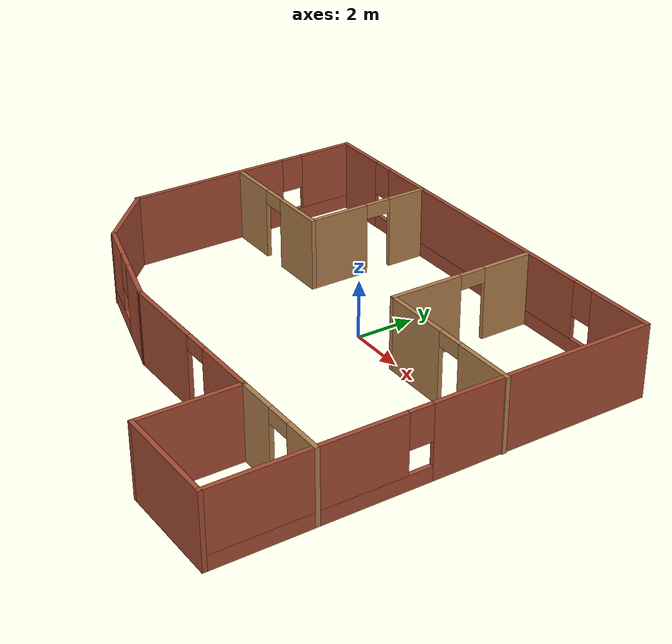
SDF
<?xml version='1.0'?>
<sdf version='1.6'>
  <model name='Building1'>
    <pose frame=''>-0.36207 -2.35948 0 0 -0 0</pose>
    <link name='Wall_0'>
      <pose frame=''>-7.80588 3.125 0 0 -0 1.5708</pose>
      <visual name='Wall_0_Visual_0'>
        <pose frame=''>-1.4063 0 1.25 0 -0 0</pose>
        <geometry>
          <box>
            <size>5.68739 0.15 2.5</size>
          </box>
        </geometry>
        <material>
          <script>
            <uri>file://media/materials/scripts/gazebo.material</uri>
            <name>Gazebo/Bricks</name>
          </script>
          <ambient>1 1 1 1</ambient>
        </material>
        <meta>
          <layer>0</layer>
        </meta>
      </visual>
      <collision name='Wall_0_Collision_0'>
        <geometry>
          <box>
            <size>5.68739 0.15 2.5</size>
          </box>
        </geometry>
        <pose frame=''>-1.4063 0 1.25 0 -0 0</pose>
      </collision>
      <visual name='Wall_0_Visual_1'>
        <pose frame=''>2.8437 0 0.25 0 -0 0</pose>
        <geometry>
          <box>
            <size>2.81261 0.15 0.5</size>
          </box>
        </geometry>
        <material>
          <script>
            <uri>file://media/materials/scripts/gazebo.material</uri>
            <name>Gazebo/Bricks</name>
          </script>
          <ambient>1 1 1 1</ambient>
        </material>
        <meta>
          <layer>0</layer>
        </meta>
      </visual>
      <collision name='Wall_0_Collision_1'>
        <geometry>
          <box>
            <size>2.81261 0.15 0.5</size>
          </box>
        </geometry>
        <pose frame=''>2.8437 0 0.25 0 -0 0</pose>
      </collision>
      <visual name='Wall_0_Visual_2'>
        <pose frame=''>3.2437 0 1.5 0 -0 0</pose>
        <geometry>
          <box>
            <size>2.01261 0.15 2</size>
          </box>
        </geometry>
        <material>
          <script>
            <uri>file://media/materials/scripts/gazebo.material</uri>
            <name>Gazebo/Bricks</name>
          </script>
          <ambient>1 1 1 1</ambient>
        </material>
        <meta>
          <layer>0</layer>
        </meta>
      </visual>
      <collision name='Wall_0_Collision_2'>
        <geometry>
          <box>
            <size>2.01261 0.15 2</size>
          </box>
        </geometry>
        <pose frame=''>3.2437 0 1.5 0 -0 0</pose>
      </collision>
      <visual name='Wall_0_Visual_3'>
        <pose frame=''>1.83739 0 1.9 0 -0 0</pose>
        <geometry>
          <box>
            <size>0.8 0.15 1.2</size>
          </box>
        </geometry>
        <material>
          <script>
            <uri>file://media/materials/scripts/gazebo.material</uri>
            <name>Gazebo/Bricks</name>
          </script>
          <ambient>1 1 1 1</ambient>
        </material>
        <meta>
          <layer>0</layer>
        </meta>
      </visual>
      <collision name='Wall_0_Collision_3'>
        <geometry>
          <box>
            <size>0.8 0.15 1.2</size>
          </box>
        </geometry>
        <pose frame=''>1.83739 0 1.9 0 -0 0</pose>
      </collision>
    </link>
    <link name='Wall_1'>
      <pose frame=''>-0.00588 7.3 0 0 -0 0</pose>
      <visual name='Wall_1_Visual_0'>
        <pose frame=''>-6.85763 0 1.25 0 -0 0</pose>
        <geometry>
          <box>
            <size>2.03474 0.15 2.5</size>
          </box>
        </geometry>
        <material>
          <script>
            <uri>file://media/materials/scripts/gazebo.material</uri>
            <name>Gazebo/Bricks</name>
          </script>
          <ambient>1 1 1 1</ambient>
        </material>
        <meta>
          <layer>0</layer>
        </meta>
      </visual>
      <collision name='Wall_1_Collision_0'>
        <geometry>
          <box>
            <size>2.03474 0.15 2.5</size>
          </box>
        </geometry>
        <pose frame=''>-6.85763 0 1.25 0 -0 0</pose>
      </collision>
      <visual name='Wall_1_Visual_1'>
        <pose frame=''>1.01737 0 0.25 0 -0 0</pose>
        <geometry>
          <box>
            <size>13.7153 0.15 0.5</size>
          </box>
        </geometry>
        <material>
          <script>
            <uri>file://media/materials/scripts/gazebo.material</uri>
            <name>Gazebo/Bricks</name>
          </script>
          <ambient>1 1 1 1</ambient>
        </material>
        <meta>
          <layer>0</layer>
        </meta>
      </visual>
      <collision name='Wall_1_Collision_1'>
        <geometry>
          <box>
            <size>13.7153 0.15 0.5</size>
          </box>
        </geometry>
        <pose frame=''>1.01737 0 0.25 0 -0 0</pose>
      </collision>
      <visual name='Wall_1_Visual_2'>
        <pose frame=''>-0.167606 0 1.5 0 -0 0</pose>
        <geometry>
          <box>
            <size>9.74531 0.15 2</size>
          </box>
        </geometry>
        <material>
          <script>
            <uri>file://media/materials/scripts/gazebo.material</uri>
            <name>Gazebo/Bricks</name>
          </script>
          <ambient>1 1 1 1</ambient>
        </material>
        <meta>
          <layer>0</layer>
        </meta>
      </visual>
      <collision name='Wall_1_Collision_2'>
        <geometry>
          <box>
            <size>9.74531 0.15 2</size>
          </box>
        </geometry>
        <pose frame=''>-0.167606 0 1.5 0 -0 0</pose>
      </collision>
      <visual name='Wall_1_Visual_3'>
        <pose frame=''>6.69002 0 1.5 0 -0 0</pose>
        <geometry>
          <box>
            <size>2.36995 0.15 2</size>
          </box>
        </geometry>
        <material>
          <script>
            <uri>file://media/materials/scripts/gazebo.material</uri>
            <name>Gazebo/Bricks</name>
          </script>
          <ambient>1 1 1 1</ambient>
        </material>
        <meta>
          <layer>0</layer>
        </meta>
      </visual>
      <collision name='Wall_1_Collision_3'>
        <geometry>
          <box>
            <size>2.36995 0.15 2</size>
          </box>
        </geometry>
        <pose frame=''>6.69002 0 1.5 0 -0 0</pose>
      </collision>
      <visual name='Wall_1_Visual_4'>
        <pose frame=''>-5.44026 0 1.9 0 -0 0</pose>
        <geometry>
          <box>
            <size>0.8 0.15 1.2</size>
          </box>
        </geometry>
        <material>
          <script>
            <uri>file://media/materials/scripts/gazebo.material</uri>
            <name>Gazebo/Bricks</name>
          </script>
          <ambient>1 1 1 1</ambient>
        </material>
        <meta>
          <layer>0</layer>
        </meta>
      </visual>
      <collision name='Wall_1_Collision_4'>
        <geometry>
          <box>
            <size>0.8 0.15 1.2</size>
          </box>
        </geometry>
        <pose frame=''>-5.44026 0 1.9 0 -0 0</pose>
      </collision>
      <visual name='Wall_1_Visual_5'>
        <pose frame=''>5.10505 0 1.9 0 -0 0</pose>
        <geometry>
          <box>
            <size>0.8 0.15 1.2</size>
          </box>
        </geometry>
        <material>
          <script>
            <uri>file://media/materials/scripts/gazebo.material</uri>
            <name>Gazebo/Bricks</name>
          </script>
          <ambient>1 1 1 1</ambient>
        </material>
        <meta>
          <layer>0</layer>
        </meta>
      </visual>
      <collision name='Wall_1_Collision_5'>
        <geometry>
          <box>
            <size>0.8 0.15 1.2</size>
          </box>
        </geometry>
        <pose frame=''>5.10505 0 1.9 0 -0 0</pose>
      </collision>
    </link>
    <link name='Wall_10'>
      <pose frame=''>-5.47687 2.90704 0 0 -0 3.14159</pose>
      <visual name='Wall_10_Visual_0'>
        <pose frame=''>-1.38853 0 1.25 0 -0 0</pose>
        <geometry>
          <box>
            <size>1.97295 0.15 2.5</size>
          </box>
        </geometry>
        <material>
          <script>
            <uri>file://media/materials/scripts/gazebo.material</uri>
            <name>Gazebo/Wood</name>
          </script>
          <ambient>1 1 1 1</ambient>
        </material>
        <meta>
          <layer>0</layer>
        </meta>
      </visual>
      <collision name='Wall_10_Collision_0'>
        <geometry>
          <box>
            <size>1.97295 0.15 2.5</size>
          </box>
        </geometry>
        <pose frame=''>-1.38853 0 1.25 0 -0 0</pose>
      </collision>
      <visual name='Wall_10_Visual_1'>
        <pose frame=''>1.43647 0 1.25 0 -0 0</pose>
        <geometry>
          <box>
            <size>1.87705 0.15 2.5</size>
          </box>
        </geometry>
        <material>
          <script>
            <uri>file://media/materials/scripts/gazebo.material</uri>
            <name>Gazebo/Wood</name>
          </script>
          <ambient>1 1 1 1</ambient>
        </material>
        <meta>
          <layer>0</layer>
        </meta>
      </visual>
      <collision name='Wall_10_Collision_1'>
        <geometry>
          <box>
            <size>1.87705 0.15 2.5</size>
          </box>
        </geometry>
        <pose frame=''>1.43647 0 1.25 0 -0 0</pose>
      </collision>
      <visual name='Wall_10_Visual_2'>
        <pose frame=''>0.047946 0 2.25 0 -0 0</pose>
        <geometry>
          <box>
            <size>0.9 0.15 0.5</size>
          </box>
        </geometry>
        <material>
          <script>
            <uri>file://media/materials/scripts/gazebo.material</uri>
            <name>Gazebo/Wood</name>
          </script>
          <ambient>1 1 1 1</ambient>
        </material>
        <meta>
          <layer>0</layer>
        </meta>
      </visual>
      <collision name='Wall_10_Collision_2'>
        <geometry>
          <box>
            <size>0.9 0.15 0.5</size>
          </box>
        </geometry>
        <pose frame=''>0.047946 0 2.25 0 -0 0</pose>
      </collision>
    </link>
    <link name='Wall_12'>
      <pose frame=''>5.99412 -3.95 0 0 -0 0</pose>
      <visual name='Wall_12_Visual_0'>
        <pose frame=''>-1.13506 0 1.25 0 -0 0</pose>
        <geometry>
          <box>
            <size>1.47988 0.15 2.5</size>
          </box>
        </geometry>
        <material>
          <script>
            <uri>file://media/materials/scripts/gazebo.material</uri>
            <name>Gazebo/Wood</name>
          </script>
          <ambient>1 1 1 1</ambient>
        </material>
        <meta>
          <layer>0</layer>
        </meta>
      </visual>
      <collision name='Wall_12_Collision_0'>
        <geometry>
          <box>
            <size>1.47988 0.15 2.5</size>
          </box>
        </geometry>
        <pose frame=''>-1.13506 0 1.25 0 -0 0</pose>
      </collision>
      <visual name='Wall_12_Visual_1'>
        <pose frame=''>1.18994 0 1.25 0 -0 0</pose>
        <geometry>
          <box>
            <size>1.37013 0.15 2.5</size>
          </box>
        </geometry>
        <material>
          <script>
            <uri>file://media/materials/scripts/gazebo.material</uri>
            <name>Gazebo/Wood</name>
          </script>
          <ambient>1 1 1 1</ambient>
        </material>
        <meta>
          <layer>0</layer>
        </meta>
      </visual>
      <collision name='Wall_12_Collision_1'>
        <geometry>
          <box>
            <size>1.37013 0.15 2.5</size>
          </box>
        </geometry>
        <pose frame=''>1.18994 0 1.25 0 -0 0</pose>
      </collision>
      <visual name='Wall_12_Visual_2'>
        <pose frame=''>0.054875 0 2.25 0 -0 0</pose>
        <geometry>
          <box>
            <size>0.9 0.15 0.5</size>
          </box>
        </geometry>
        <material>
          <script>
            <uri>file://media/materials/scripts/gazebo.material</uri>
            <name>Gazebo/Wood</name>
          </script>
          <ambient>1 1 1 1</ambient>
        </material>
        <meta>
          <layer>0</layer>
        </meta>
      </visual>
      <collision name='Wall_12_Collision_2'>
        <geometry>
          <box>
            <size>0.9 0.15 0.5</size>
          </box>
        </geometry>
        <pose frame=''>0.054875 0 2.25 0 -0 0</pose>
      </collision>
    </link>
    <link name='Wall_17'>
      <pose frame=''>2.48691 4.70704 0 0 0 -1.5708</pose>
      <visual name='Wall_17_Visual_0'>
        <pose frame=''>-1.71972 0 1.25 0 -0 0</pose>
        <geometry>
          <box>
            <size>1.81055 0.15 2.5</size>
          </box>
        </geometry>
        <material>
          <script>
            <uri>file://media/materials/scripts/gazebo.material</uri>
            <name>Gazebo/Wood</name>
          </script>
          <ambient>1 1 1 1</ambient>
        </material>
        <meta>
          <layer>0</layer>
        </meta>
      </visual>
      <collision name='Wall_17_Collision_0'>
        <geometry>
          <box>
            <size>1.81055 0.15 2.5</size>
          </box>
        </geometry>
        <pose frame=''>-1.71972 0 1.25 0 -0 0</pose>
      </collision>
      <visual name='Wall_17_Visual_1'>
        <pose frame=''>1.35528 0 1.25 0 -0 0</pose>
        <geometry>
          <box>
            <size>2.53945 0.15 2.5</size>
          </box>
        </geometry>
        <material>
          <script>
            <uri>file://media/materials/scripts/gazebo.material</uri>
            <name>Gazebo/Wood</name>
          </script>
          <ambient>1 1 1 1</ambient>
        </material>
        <meta>
          <layer>0</layer>
        </meta>
      </visual>
      <collision name='Wall_17_Collision_1'>
        <geometry>
          <box>
            <size>2.53945 0.15 2.5</size>
          </box>
        </geometry>
        <pose frame=''>1.35528 0 1.25 0 -0 0</pose>
      </collision>
      <visual name='Wall_17_Visual_2'>
        <pose frame=''>-0.364448 0 2.25 0 -0 0</pose>
        <geometry>
          <box>
            <size>0.9 0.15 0.5</size>
          </box>
        </geometry>
        <material>
          <script>
            <uri>file://media/materials/scripts/gazebo.material</uri>
            <name>Gazebo/Wood</name>
          </script>
          <ambient>1 1 1 1</ambient>
        </material>
        <meta>
          <layer>0</layer>
        </meta>
      </visual>
      <collision name='Wall_17_Collision_2'>
        <geometry>
          <box>
            <size>0.9 0.15 0.5</size>
          </box>
        </geometry>
        <pose frame=''>-0.364448 0 2.25 0 -0 0</pose>
      </collision>
    </link>
    <link name='Wall_18'>
      <pose frame=''>5.16191 2.15704 0 0 -0 0</pose>
      <visual name='Wall_18_Visual_0'>
        <pose frame=''>-1.52583 0 1.25 0 -0 0</pose>
        <geometry>
          <box>
            <size>2.44833 0.15 2.5</size>
          </box>
        </geometry>
        <material>
          <script>
            <uri>file://media/materials/scripts/gazebo.material</uri>
            <name>Gazebo/Wood</name>
          </script>
          <ambient>1 1 1 1</ambient>
        </material>
        <meta>
          <layer>0</layer>
        </meta>
      </visual>
      <collision name='Wall_18_Collision_0'>
        <geometry>
          <box>
            <size>2.44833 0.15 2.5</size>
          </box>
        </geometry>
        <pose frame=''>-1.52583 0 1.25 0 -0 0</pose>
      </collision>
      <visual name='Wall_18_Visual_1'>
        <pose frame=''>1.67417 0 1.25 0 -0 0</pose>
        <geometry>
          <box>
            <size>2.15167 0.15 2.5</size>
          </box>
        </geometry>
        <material>
          <script>
            <uri>file://media/materials/scripts/gazebo.material</uri>
            <name>Gazebo/Wood</name>
          </script>
          <ambient>1 1 1 1</ambient>
        </material>
        <meta>
          <layer>0</layer>
        </meta>
      </visual>
      <collision name='Wall_18_Collision_1'>
        <geometry>
          <box>
            <size>2.15167 0.15 2.5</size>
          </box>
        </geometry>
        <pose frame=''>1.67417 0 1.25 0 -0 0</pose>
      </collision>
      <visual name='Wall_18_Visual_2'>
        <pose frame=''>0.148333 0 2.25 0 -0 0</pose>
        <geometry>
          <box>
            <size>0.9 0.15 0.5</size>
          </box>
        </geometry>
        <material>
          <script>
            <uri>file://media/materials/scripts/gazebo.material</uri>
            <name>Gazebo/Wood</name>
          </script>
          <ambient>1 1 1 1</ambient>
        </material>
        <meta>
          <layer>0</layer>
        </meta>
      </visual>
      <collision name='Wall_18_Collision_2'>
        <geometry>
          <box>
            <size>0.9 0.15 0.5</size>
          </box>
        </geometry>
        <pose frame=''>0.148333 0 2.25 0 -0 0</pose>
      </collision>
    </link>
    <link name='Wall_2'>
      <pose frame=''>7.79412 0 0 0 0 -1.5708</pose>
      <visual name='Wall_2_Visual_0'>
        <pose frame=''>-3.54908 0 1.25 0 -0 0</pose>
        <geometry>
          <box>
            <size>7.65185 0.15 2.5</size>
          </box>
        </geometry>
        <material>
          <script>
            <uri>file://media/materials/scripts/gazebo.material</uri>
            <name>Gazebo/Bricks</name>
          </script>
          <ambient>1 1 1 1</ambient>
        </material>
        <meta>
          <layer>0</layer>
        </meta>
      </visual>
      <collision name='Wall_2_Collision_0'>
        <geometry>
          <box>
            <size>7.65185 0.15 2.5</size>
          </box>
        </geometry>
        <pose frame=''>-3.54908 0 1.25 0 -0 0</pose>
      </collision>
      <visual name='Wall_2_Visual_1'>
        <pose frame=''>3.82592 0 0.25 0 -0 0</pose>
        <geometry>
          <box>
            <size>7.09815 0.15 0.5</size>
          </box>
        </geometry>
        <material>
          <script>
            <uri>file://media/materials/scripts/gazebo.material</uri>
            <name>Gazebo/Bricks</name>
          </script>
          <ambient>1 1 1 1</ambient>
        </material>
        <meta>
          <layer>0</layer>
        </meta>
      </visual>
      <collision name='Wall_2_Collision_1'>
        <geometry>
          <box>
            <size>7.09815 0.15 0.5</size>
          </box>
        </geometry>
        <pose frame=''>3.82592 0 0.25 0 -0 0</pose>
      </collision>
      <visual name='Wall_2_Visual_2'>
        <pose frame=''>4.22592 0 1.5 0 -0 0</pose>
        <geometry>
          <box>
            <size>6.29815 0.15 2</size>
          </box>
        </geometry>
        <material>
          <script>
            <uri>file://media/materials/scripts/gazebo.material</uri>
            <name>Gazebo/Bricks</name>
          </script>
          <ambient>1 1 1 1</ambient>
        </material>
        <meta>
          <layer>0</layer>
        </meta>
      </visual>
      <collision name='Wall_2_Collision_2'>
        <geometry>
          <box>
            <size>6.29815 0.15 2</size>
          </box>
        </geometry>
        <pose frame=''>4.22592 0 1.5 0 -0 0</pose>
      </collision>
      <visual name='Wall_2_Visual_3'>
        <pose frame=''>0.676848 0 1.9 0 -0 0</pose>
        <geometry>
          <box>
            <size>0.8 0.15 1.2</size>
          </box>
        </geometry>
        <material>
          <script>
            <uri>file://media/materials/scripts/gazebo.material</uri>
            <name>Gazebo/Bricks</name>
          </script>
          <ambient>1 1 1 1</ambient>
        </material>
        <meta>
          <layer>0</layer>
        </meta>
      </visual>
      <collision name='Wall_2_Collision_3'>
        <geometry>
          <box>
            <size>0.8 0.15 1.2</size>
          </box>
        </geometry>
        <pose frame=''>0.676848 0 1.9 0 -0 0</pose>
      </collision>
    </link>
    <link name='Wall_3'>
      <collision name='Wall_3_Collision'>
        <geometry>
          <box>
            <size>3.75 0.15 2.5</size>
          </box>
        </geometry>
        <pose frame=''>0 0 1.25 0 -0 0</pose>
      </collision>
      <visual name='Wall_3_Visual'>
        <pose frame=''>0 0 1.25 0 -0 0</pose>
        <geometry>
          <box>
            <size>3.75 0.15 2.5</size>
          </box>
        </geometry>
        <material>
          <script>
            <uri>file://media/materials/scripts/gazebo.material</uri>
            <name>Gazebo/Bricks</name>
          </script>
          <ambient>1 1 1 1</ambient>
        </material>
        <meta>
          <layer>0</layer>
        </meta>
      </visual>
      <pose frame=''>5.99412 -7.3 0 0 -0 3.14159</pose>
    </link>
    <link name='Wall_4'>
      <collision name='Wall_4_Collision'>
        <geometry>
          <box>
            <size>3.5 0.15 2.5</size>
          </box>
        </geometry>
        <pose frame=''>0 0 1.25 0 -0 0</pose>
      </collision>
      <visual name='Wall_4_Visual'>
        <pose frame=''>0 0 1.25 0 -0 0</pose>
        <geometry>
          <box>
            <size>3.5 0.15 2.5</size>
          </box>
        </geometry>
        <material>
          <script>
            <uri>file://media/materials/scripts/gazebo.material</uri>
            <name>Gazebo/Bricks</name>
          </script>
          <ambient>1 1 1 1</ambient>
        </material>
        <meta>
          <layer>0</layer>
        </meta>
      </visual>
      <pose frame=''>4.19412 -5.625 0 0 -0 1.5708</pose>
    </link>
    <link name='Wall_5'>
      <pose frame=''>1.14412 -3.95 0 0 -0 3.14159</pose>
      <visual name='Wall_5_Visual_0'>
        <pose frame=''>-1.9885 0 1.25 0 -0 0</pose>
        <geometry>
          <box>
            <size>2.27301 0.15 2.5</size>
          </box>
        </geometry>
        <material>
          <script>
            <uri>file://media/materials/scripts/gazebo.material</uri>
            <name>Gazebo/Bricks</name>
          </script>
          <ambient>1 1 1 1</ambient>
        </material>
        <meta>
          <layer>0</layer>
        </meta>
      </visual>
      <collision name='Wall_5_Collision_0'>
        <geometry>
          <box>
            <size>2.27301 0.15 2.5</size>
          </box>
        </geometry>
        <pose frame=''>-1.9885 0 1.25 0 -0 0</pose>
      </collision>
      <visual name='Wall_5_Visual_1'>
        <pose frame=''>1.5865 0 1.25 0 -0 0</pose>
        <geometry>
          <box>
            <size>3.07699 0.15 2.5</size>
          </box>
        </geometry>
        <material>
          <script>
            <uri>file://media/materials/scripts/gazebo.material</uri>
            <name>Gazebo/Bricks</name>
          </script>
          <ambient>1 1 1 1</ambient>
        </material>
        <meta>
          <layer>0</layer>
        </meta>
      </visual>
      <collision name='Wall_5_Collision_1'>
        <geometry>
          <box>
            <size>3.07699 0.15 2.5</size>
          </box>
        </geometry>
        <pose frame=''>1.5865 0 1.25 0 -0 0</pose>
      </collision>
      <visual name='Wall_5_Visual_2'>
        <pose frame=''>-0.401994 0 2.25 0 -0 0</pose>
        <geometry>
          <box>
            <size>0.9 0.15 0.5</size>
          </box>
        </geometry>
        <material>
          <script>
            <uri>file://media/materials/scripts/gazebo.material</uri>
            <name>Gazebo/Bricks</name>
          </script>
          <ambient>1 1 1 1</ambient>
        </material>
        <meta>
          <layer>0</layer>
        </meta>
      </visual>
      <collision name='Wall_5_Collision_2'>
        <geometry>
          <box>
            <size>0.9 0.15 0.5</size>
          </box>
        </geometry>
        <pose frame=''>-0.401994 0 2.25 0 -0 0</pose>
      </collision>
    </link>
    <link name='Wall_6'>
      <pose frame=''>-3.88603 -3.41942 0 0 -0 2.87979</pose>
      <visual name='Wall_6_Visual_0'>
        <pose frame=''>-1.17839 0 1.25 0 -0 0</pose>
        <geometry>
          <box>
            <size>1.89321 0.15 2.5</size>
          </box>
        </geometry>
        <material>
          <script>
            <uri>file://media/materials/scripts/gazebo.material</uri>
            <name>Gazebo/Bricks</name>
          </script>
          <ambient>1 1 1 1</ambient>
        </material>
        <meta>
          <layer>0</layer>
        </meta>
      </visual>
      <collision name='Wall_6_Collision_0'>
        <geometry>
          <box>
            <size>1.89321 0.15 2.5</size>
          </box>
        </geometry>
        <pose frame=''>-1.17839 0 1.25 0 -0 0</pose>
      </collision>
      <visual name='Wall_6_Visual_1'>
        <pose frame=''>0.946606 0 0.25 0 -0 0</pose>
        <geometry>
          <box>
            <size>2.35679 0.15 0.5</size>
          </box>
        </geometry>
        <material>
          <script>
            <uri>file://media/materials/scripts/gazebo.material</uri>
            <name>Gazebo/Bricks</name>
          </script>
          <ambient>1 1 1 1</ambient>
        </material>
        <meta>
          <layer>0</layer>
        </meta>
      </visual>
      <collision name='Wall_6_Collision_1'>
        <geometry>
          <box>
            <size>2.35679 0.15 0.5</size>
          </box>
        </geometry>
        <pose frame=''>0.946606 0 0.25 0 -0 0</pose>
      </collision>
      <visual name='Wall_6_Visual_2'>
        <pose frame=''>1.34661 0 1.5 0 -0 0</pose>
        <geometry>
          <box>
            <size>1.55679 0.15 2</size>
          </box>
        </geometry>
        <material>
          <script>
            <uri>file://media/materials/scripts/gazebo.material</uri>
            <name>Gazebo/Bricks</name>
          </script>
          <ambient>1 1 1 1</ambient>
        </material>
        <meta>
          <layer>0</layer>
        </meta>
      </visual>
      <collision name='Wall_6_Collision_2'>
        <geometry>
          <box>
            <size>1.55679 0.15 2</size>
          </box>
        </geometry>
        <pose frame=''>1.34661 0 1.5 0 -0 0</pose>
      </collision>
      <visual name='Wall_6_Visual_3'>
        <pose frame=''>0.168212 0 1.9 0 -0 0</pose>
        <geometry>
          <box>
            <size>0.8 0.15 1.2</size>
          </box>
        </geometry>
        <material>
          <script>
            <uri>file://media/materials/scripts/gazebo.material</uri>
            <name>Gazebo/Bricks</name>
          </script>
          <ambient>1 1 1 1</ambient>
        </material>
        <meta>
          <layer>0</layer>
        </meta>
      </visual>
      <collision name='Wall_6_Collision_3'>
        <geometry>
          <box>
            <size>0.8 0.15 1.2</size>
          </box>
        </geometry>
        <pose frame=''>0.168212 0 1.9 0 -0 0</pose>
      </collision>
    </link>
    <link name='Wall_7'>
      <collision name='Wall_7_Collision'>
        <geometry>
          <box>
            <size>2.82279 0.15 2.5</size>
          </box>
        </geometry>
        <pose frame=''>0 0 1.25 0 -0 0</pose>
      </collision>
      <visual name='Wall_7_Visual'>
        <pose frame=''>0 0 1.25 0 -0 0</pose>
        <geometry>
          <box>
            <size>2.82279 0.15 2.5</size>
          </box>
        </geometry>
        <material>
          <script>
            <uri>file://media/materials/scripts/gazebo.material</uri>
            <name>Gazebo/Bricks</name>
          </script>
          <ambient>1 1 1 1</ambient>
        </material>
        <meta>
          <layer>0</layer>
        </meta>
      </visual>
      <pose frame=''>-6.83603 -1.96942 0 0 -0 2.38288</pose>
    </link>
    <link name='Wall_9'>
      <pose frame=''>-3.17687 5.08204 0 0 0 -1.5708</pose>
      <visual name='Wall_9_Visual_0'>
        <pose frame=''>-1.53821 0 1.25 0 -0 0</pose>
        <geometry>
          <box>
            <size>1.42359 0.15 2.5</size>
          </box>
        </geometry>
        <material>
          <script>
            <uri>file://media/materials/scripts/gazebo.material</uri>
            <name>Gazebo/Wood</name>
          </script>
          <ambient>1 1 1 1</ambient>
        </material>
        <meta>
          <layer>0</layer>
        </meta>
      </visual>
      <collision name='Wall_9_Collision_0'>
        <geometry>
          <box>
            <size>1.42359 0.15 2.5</size>
          </box>
        </geometry>
        <pose frame=''>-1.53821 0 1.25 0 -0 0</pose>
      </collision>
      <visual name='Wall_9_Visual_1'>
        <pose frame=''>1.16179 0 1.25 0 -0 0</pose>
        <geometry>
          <box>
            <size>2.17641 0.15 2.5</size>
          </box>
        </geometry>
        <material>
          <script>
            <uri>file://media/materials/scripts/gazebo.material</uri>
            <name>Gazebo/Wood</name>
          </script>
          <ambient>1 1 1 1</ambient>
        </material>
        <meta>
          <layer>0</layer>
        </meta>
      </visual>
      <collision name='Wall_9_Collision_1'>
        <geometry>
          <box>
            <size>2.17641 0.15 2.5</size>
          </box>
        </geometry>
        <pose frame=''>1.16179 0 1.25 0 -0 0</pose>
      </collision>
      <visual name='Wall_9_Visual_2'>
        <pose frame=''>-0.376414 0 2.25 0 -0 0</pose>
        <geometry>
          <box>
            <size>0.9 0.15 0.5</size>
          </box>
        </geometry>
        <material>
          <script>
            <uri>file://media/materials/scripts/gazebo.material</uri>
            <name>Gazebo/Wood</name>
          </script>
          <ambient>1 1 1 1</ambient>
        </material>
        <meta>
          <layer>0</layer>
        </meta>
      </visual>
      <collision name='Wall_9_Collision_2'>
        <geometry>
          <box>
            <size>0.9 0.15 0.5</size>
          </box>
        </geometry>
        <pose frame=''>-0.376414 0 2.25 0 -0 0</pose>
      </collision>
    </link>
    <static>1</static>
  </model>
</sdf>
